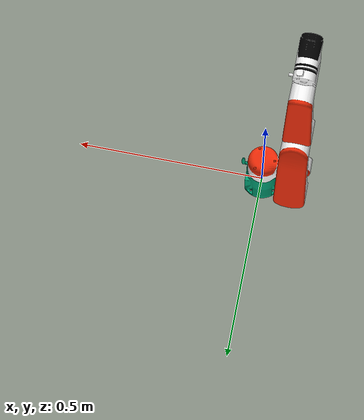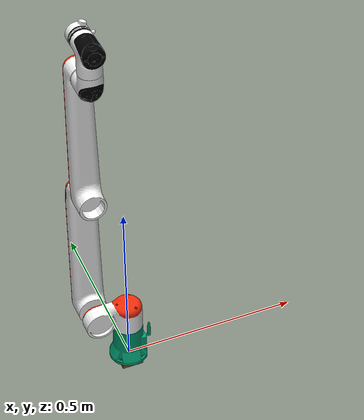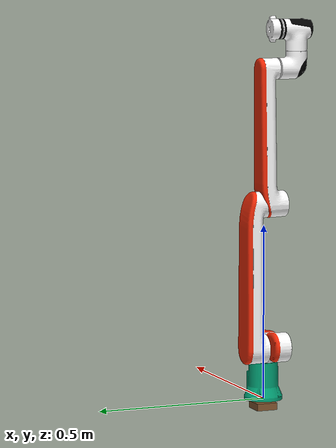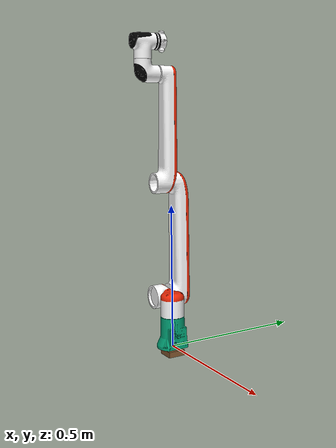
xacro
<?xml version='1.0' encoding='UTF-8'?>
<robot xmlns:xacro="http://www.ros.org/wiki/xacro" name="rm_eco63">
  <!-- arg link6_type-->
  <xacro:arg name="link6_type" default="Link6"/>
  <!-- arg->property-->
  <xacro:property name="link6_type" value="$(arg link6_type)"/>
  <xacro:include filename="$(find rm_description)/urdf/ECO63/rm_eco63.transmission.xacro"/>
  <xacro:include filename="$(find rm_description)/urdf/ECO63/rm_eco63.gazebo.xacro"/>
  <!-- Inertial matrix-->
  <xacro:macro name="inertial_matrix" params="mass">
    <inertial>
      <mass value="${mass}"/>
      <inertia ixx="1.0" ixy="0.0" ixz="0.0" iyy="0.5" iyz="0.0" izz="1.0"/>
    </inertial>
  </xacro:macro>
  <xacro:macro name="Box_inertial_matrix" params="m l w h">
    <inertial>
      <mass value="${m}"/>
      <inertia ixx="${m*(h*h + l*l)/12}" ixy="0" ixz="0" iyy="${m*(w*w + l*l)/12}" iyz="0" izz="${m*(w*w + h*h)/12}"/>
    </inertial>
  </xacro:macro>
  <link name="dummy">
    </link>
  <joint name="dummy_joint" type="fixed">
    <parent link="dummy"/>
    <child link="base_link"/>
  </joint>
  <!-- ///////////////////////////////////////   bottom_joint   //////////////////////////////////////////-->
  <joint name="bottom_joint" type="fixed">
    <origin xyz="0 0 0" rpy="0 0 0"/>
    <parent link="base_link"/>
    <child link="bottom_link"/>
  </joint>
  <link name="bottom_link">
    <visual>
      <origin xyz=" 0 0 -0.02"  rpy="0 0 0"/>
      <geometry>
        <box size="0.06 0.06 0.02" />
      </geometry>
      <material name="Brown" />
    </visual>
    <collision>
      <origin xyz="0 0 0.01" rpy="0 0 0"/>
      <geometry>
        <box size="0.06 0.06 0.02"/>
      </geometry>
    </collision>
    <xacro:Box_inertial_matrix m="500" l="1" w="1" h="0.02"/>
  </link>
  <link name="base_link">
    <inertial>
      <origin xyz="0.00020533 -8.2462E-05 0.042566" rpy="0 0 0"/>
      <mass value="1"/>
      <inertia ixx="0.00082414" ixy="-2.9336E-06" ixz="2.8699E-05" iyy="0.0008206" iyz="-2.2123E-06" izz="0.00068569"/>
    </inertial>
    <visual>
      <origin rpy="0 0 0" xyz="0 0 0"/>
      <geometry>
        <mesh filename="package://rm_description/meshes/dae/eco63/base_link.dae"/>
      </geometry>
    </visual>
    <collision>
      <origin xyz="0 0 0" rpy="0 0 0"/>
      <geometry>
        <mesh filename="package://rm_description/meshes/ECO63/base_link.STL"/>
      </geometry>
    </collision>
  </link>
  <link name="Link1">
    <inertial>
      <origin xyz="-0.0122 -0.0001 -0.0346" rpy="0 0 0"/>
      <mass value="1.6026"/>
      <inertia ixx="0.0020078355" ixy="-0.000043739" ixz="-0.0006663696" iyy="0.0033806191" iyz="-0.0000114927" izz="0.0025157844"/>
    </inertial>
    <visual>
      <origin
        xyz="0 0 0"
        rpy="0 0 0" />
      <geometry>
        <mesh
          filename="package://rm_description/meshes/dae/eco63/link1_v1.0.dae" />
      </geometry>
    </visual>
    <collision>
      <origin xyz="0 0 0" rpy="0 0 0"/>
      <geometry>
        <mesh filename="package://rm_description/meshes/ECO63/Link1.STL"/>
      </geometry>
    </collision>
  </link>
  <joint name="joint1" type="revolute">
    <origin xyz="0 0 0.1625" rpy="0 0 0"/>
    <parent link="base_link"/>
    <child link="Link1"/>
    <axis xyz="0 0 1"/>
    <limit lower="-3.106" upper="3.106" effort="60" velocity="3.14"/>
    <dynamics damping="50" friction="1"/>
  </joint>
  <link name="Link2">
    <inertial>
      <origin rpy="0 0 0" xyz="0.123600000728332 9.86871964907185e-05 0.0551000007331541"/>
      <mass value="2.8169"/>
      <inertia ixx="0.00305137723898191" ixy="2.86097284213423e-06" ixz="0.00369151818306214" iyy="0.059635782030822" iyz="-4.77799806514506e-06" izz="0.059632876930196"/>
    </inertial>
    <visual>
      <origin rpy="-3.14158530717959 0 -7.34641020638804e-06" xyz="0 0 0"/>
      <geometry>
        <mesh filename="package://rm_description/meshes/dae/eco63/link2_v1.0.dae"/>
      </geometry>
    </visual>
    <collision>
      <origin rpy="-3.14158530717959 0 -7.34641020638804e-06" xyz="0 0 0"/>
      <geometry>
        <mesh filename="package://rm_description/meshes/ECO63/Link2.STL"/>
      </geometry>
    </collision>
  </link>
  <joint name="joint2" type="revolute">
    <origin rpy="-1.57079265348487 -1.57079265358979 3.14159265348487" xyz="-0.086 0 0"/>
    <parent link="Link1"/>
    <child link="Link2"/>
    <axis xyz="5.39695145436e-11 7.34641020638507e-06 -0.999999999973015"/>
    <limit lower="-3.106" upper="2.356" effort="60" velocity="3.14"/>
    <dynamics damping="50" friction="1"/>
  </joint>
  <link name="Link3">
    <inertial>
      <origin rpy="0 0 0" xyz="0.160246774026992 -9.88120953800659e-05 0.00679865060963923"/>
      <mass value="2.6857"/>
      <inertia ixx="0.00303448689033119" ixy="-7.56149251500227e-06" ixz="-0.00404883344765761" iyy="0.0669637574904248" iyz="-7.95641618581859e-06" izz="0.0659921968192439"/>
    </inertial>
    <visual>
      <origin rpy="-6.43905470160977e-08 -0.00872659994555747 7.41080075348466e-06" xyz="0 0 0"/>
      <geometry>
        <mesh filename="package://rm_description/meshes/dae/eco63/link3_v1.0.dae"/>
      </geometry>
    </visual>
    <collision>
      <origin rpy="-6.43905470160977e-08 -0.00872659994555747 7.41080075348466e-06" xyz="0 0 0"/>
      <geometry>
        <mesh filename="package://rm_description/meshes/ECO63/Link3.STL"/>
      </geometry>
    </collision>
  </link>
  <joint name="joint3" type="revolute">
    <origin rpy="-3.14158530717959 -0.00872660000000014 0" xyz="0.409999999988936 -3.01202818462926e-06 0"/>
    <parent link="Link2"/>
    <child link="Link3"/>
    <axis xyz="-0.00872648918596077 -2.79725562366948e-10 0.999961923468332"/>
    <limit lower="-2.932" upper="2.7576" effort="30" velocity="3.14"/>
    <dynamics damping="50" friction="1"/>
  </joint>
  <link name="Link4">
    <inertial>
      <origin rpy="0 0 0" xyz="2.66160203449442e-07 -0.035899999999215 0.0036999999980435"/>
      <mass value="0.625"/>
      <inertia ixx="0.000545633601743592" ixy="-1.17310739645598e-07" ixz="-1.19697712100337e-07" iyy="0.000317334498257634" iyz="-0.0000813961" izz="0.0005169693"/>
    </inertial>
    <visual>
      <origin rpy="5.44983364746417e-11 3.17744588418378e-08 7.41065843880045e-06" xyz="0 0 0"/>
      <geometry>
        <mesh filename="package://rm_description/meshes/dae/eco63/link4_v1.0.dae"/>
      </geometry>
    </visual>
    <collision>
      <origin rpy="5.44983364746417e-11 3.17744588418378e-08 7.41065843880045e-06" xyz="0 0 0"/>
      <geometry>
        <mesh filename="package://rm_description/meshes/ECO63/Link4.STL"/>
      </geometry>
    </collision>
  </link>
  <joint name="joint4" type="revolute">
    <origin rpy="-0.0087266 0 1.5708" xyz="0.380499512394097 2.81601353437318e-06 -0.0555806914397865"/>
    <parent link="Link3"/>
    <child link="Link4"/>
    <axis xyz="3.17744590494417e-08 -5.42628458021758e-11 0.999999999999999"/>
    <limit lower="-3.106" upper="3.106" effort="10" velocity="3.14"/>
    <dynamics damping="50" friction="1"/>
  </joint>
  <link name="Link5">
    <inertial>
      <origin rpy="0 0 0" xyz="-4.81280235991029e-08 0.0246000000003597 -0.0065999999984839"/>
      <mass value="0.6743"/>
      <inertia ixx="0.0006850659" ixy="-5.79550732114318e-07" ixz="-1.08014144854789e-08" iyy="0.0003873373" iyz="-0.000113520795720502" izz="0.0006178918"/>
    </inertial>
    <visual>
      <origin rpy="5.42627659536425e-11 7.41065832210452e-06 -3.18016794599308e-08" xyz="0 0 0"/>
      <geometry>
        <mesh filename="package://rm_description/meshes/dae/eco63/link5_v1.0.dae"/>
      </geometry>
    </visual>
    <collision>
      <origin rpy="5.42627659536425e-11 7.41065832210452e-06 -3.18016794599308e-08" xyz="0 0 0"/>
      <geometry>
        <mesh filename="package://rm_description/meshes/ECO63/Link5.STL"/>
      </geometry>
    </collision>
  </link>
  <joint name="joint5" type="revolute">
    <origin rpy="1.5708 0 0" xyz="8.15172428261992e-07 -0.109999999996979 -5.99481932343507e-12"/>
    <parent link="Link4"/>
    <child link="Link5"/>
    <axis xyz="7.41065832198128e-06 -5.4498458344048e-11 0.999999999972541"/>
    <limit lower="-3.106" upper="3.106" effort="10" velocity="3.14"/>
    <dynamics damping="50" friction="1"/>
  </joint>
  <xacro:if value="${ link6_type =='Link6' }">
    <link name="Link6">
      <inertial>
        <origin rpy="0 0 0" xyz="0.000999999679050503 7.41120649346072e-09 -0.0101000000317744"/>
        <mass value="0.107"/>
        <inertia ixx="0.0000441232" ixy="-6.35329685252655e-08" ixz="-0.0000002997" iyy="0.0000350778" iyz="-2.89022206024016e-08" izz="0.0000654409"/>
      </inertial>
      <visual>
        <origin rpy="5.44983364746417e-11 3.17744588418378e-08 7.41065843880045e-06" xyz="0 0 0"/>
        <geometry>
          <mesh filename="package://rm_description/meshes/dae/eco63/link6_v1.0.dae"/>
        </geometry>
      </visual>
      <collision>
        <origin rpy="5.44983364746417e-11 3.17744588418378e-08 7.41065843880045e-06" xyz="0 0 0"/>
        <geometry>
          <mesh filename="package://rm_description/meshes/ECO63/Link6.STL"/>
        </geometry>
      </collision>
    </link>
    <joint name="joint6" type="revolute">
      <origin rpy="-1.5708 0 0" xyz="2.52823355345104e-09 0.0794999999999999 4.31388822291248e-12"/>
      <parent link="Link5"/>
      <child link="Link6"/>
      <axis xyz="3.177445904944e-08 -5.42628458021758e-11 0.999999999999999"/>
      <limit lower="-6.28" upper="6.28" effort="10" velocity="3.14"/>
      <dynamics damping="50" friction="1"/>
    </joint>
  </xacro:if>
  <xacro:if value="${ link6_type =='Link6_6fb' }">
    <link name="Link6">
      <inertial>
        <origin rpy="0 0 0" xyz="0.000999999679050503 7.41120649346072e-09 -0.0101000000317744"/>
        <mass value="0.248"/>
        <inertia ixx="4.41232009230933e-05" ixy="-6.35329685252655e-08" ixz="-2.99699108468827e-07" iyy="3.50777990578641e-05" iyz="-2.89022206024016e-08" izz="6.54409000190423e-05"/>
      </inertial>
      <visual>
        <origin rpy="5.44983364746417e-11 3.17744588418378e-08 7.41065843880045e-06" xyz="0 0 0"/>
        <geometry>
          <mesh filename="package://rm_description/meshes/dae/eco63/link6Fb_v1.0.dae"/>
        </geometry>
      </visual>
      <collision>
        <origin rpy="5.44983364746417e-11 3.17744588418378e-08 7.41065843880045e-06" xyz="0 0 0"/>
        <geometry>
          <mesh filename="package://rm_description/meshes/ECO63/Link6_6fb.STL"/>
        </geometry>
      </collision>
    </link>
    <joint name="joint6" type="revolute">
      <origin rpy="-1.5708 0 0" xyz="3.06886211205063e-09 0.0964999999999999 5.2363548869315e-12"/>
      <parent link="Link5"/>
      <child link="Link6"/>
      <axis xyz="3.177445904944e-08 -5.42628458021758e-11 0.999999999999999"/>
      <limit lower="-6.28" upper="6.28" effort="10" velocity="3.14"/>
    </joint>
  </xacro:if>
  <!-- Transmissions for ROS Control-->
  <xacro:macro name="transmission_block" params="joint_name">
    <transmission name="tran1">
      <type>transmission_interface/SimpleTransmission</type>
      <joint name="${joint_name}">
        <hardwareInterface>hardware_interface/PositionJointInterface</hardwareInterface>
      </joint>
      <actuator name="motor1">
        <hardwareInterface>hardware_interface/PositionJointInterface</hardwareInterface>
        <mechanicalReduction>1</mechanicalReduction>
      </actuator>
    </transmission>
  </xacro:macro>
  <xacro:transmission_block joint_name="joint1"/>
  <xacro:transmission_block joint_name="joint2"/>
  <xacro:transmission_block joint_name="joint3"/>
  <xacro:transmission_block joint_name="joint4"/>
  <xacro:transmission_block joint_name="joint5"/>
  <xacro:transmission_block joint_name="joint6"/>
  <!-- ros_control plugin-->
  <gazebo>
    <plugin name="gazebo_ros_control" filename="libgazebo_ros_control.so">
      <robotNamespace>/arm</robotNamespace>
      <robotSimType>gazebo_ros_control/DefaultRobotHWSim</robotSimType>
      <legacyModeNS>true</legacyModeNS>
    </plugin>
  </gazebo>
</robot>
